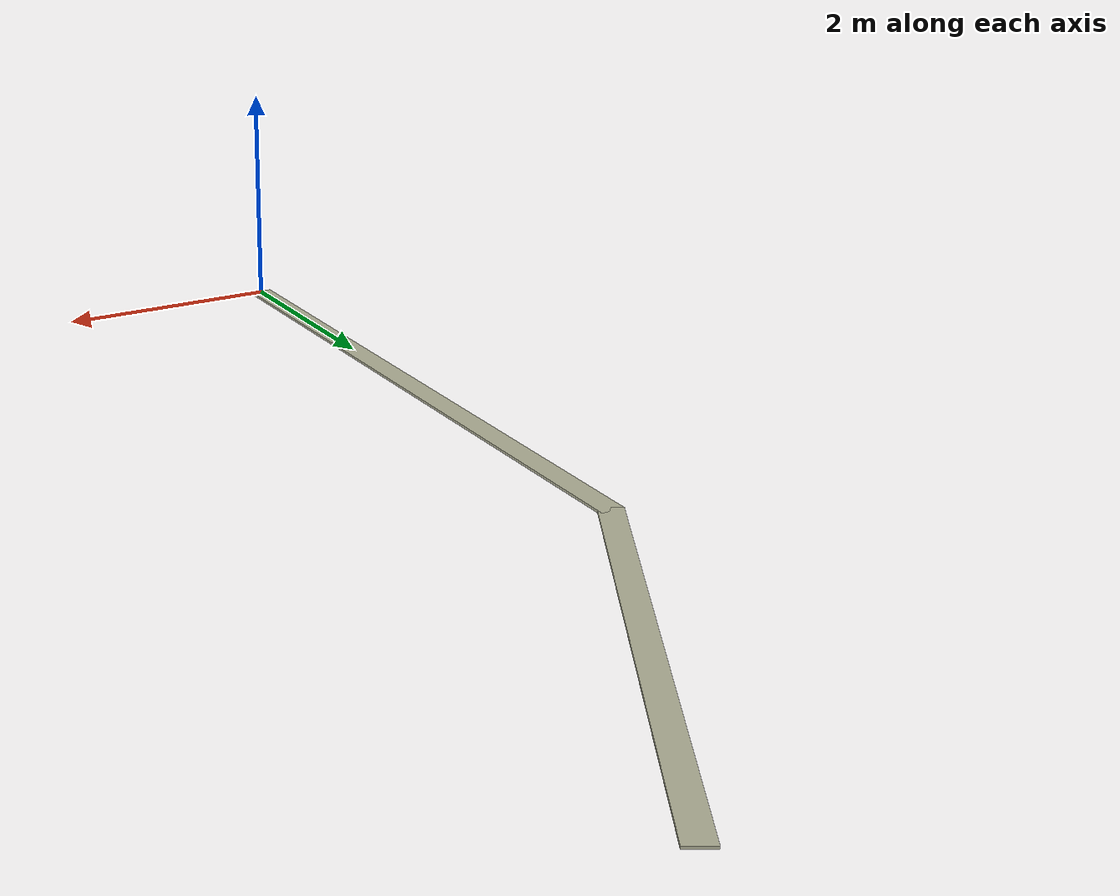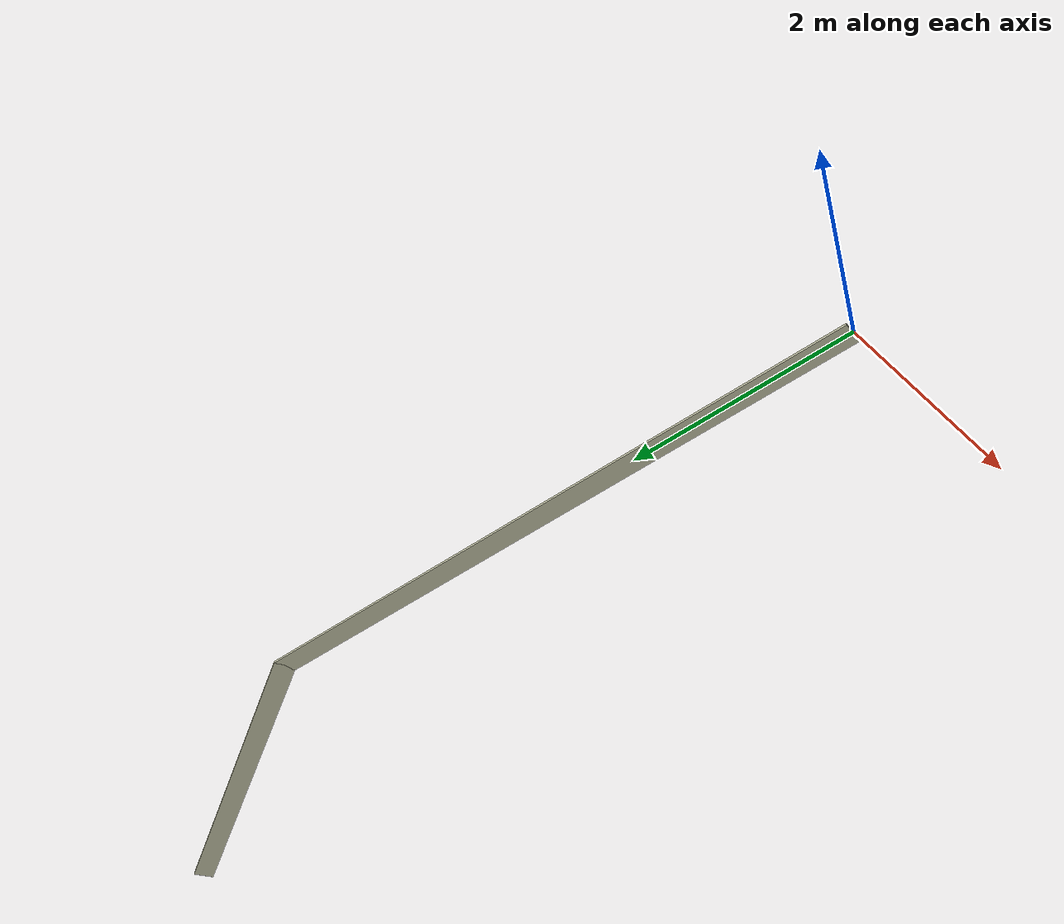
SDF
<?xml version='1.0'?>
<sdf version='1.7'>
  <model name='main_pipe'>
    <static>true</static>
    <link name='main_pipe'>

      <visual name='main_pipe1'>
        <geometry>
          <box>
            <size>0.2 6 0.02</size>
          </box>
        </geometry>
        <material>
          <script>
            <name>Gazebo/Grey</name>
            <uri>file://media/materials/scripts/gazebo.material</uri>
          </script>
          <shader type='pixel'>
            <normal_map>__default__</normal_map>
          </shader>
          <ambient>0 0 1 0</ambient>
          <diffuse>0.7 0.7 0.6 1</diffuse>
          <specular>0.01 0.01 0.01 1</specular>
          <emissive>0 0 1 1</emissive>
        </material>
        <pose>0 3 0 0 0 0</pose>
        <transparency>0</transparency>
        <cast_shadows>1</cast_shadows>
      </visual>

      <visual name="main_pipe2">
        <pose>0.98 7.68 0 0 0 -0.52</pose>
        <cast_shadows>false</cast_shadows>
        <geometry>
            <box>
              <size>0.2 4 0.02</size>
            </box>
        </geometry>
        <material>
          <script>
            <name>Gazebo/Grey</name>
            <uri>file://media/materials/scripts/gazebo.material</uri>
          </script>
          <shader type='pixel'>
            <normal_map>__default__</normal_map>
          </shader>
          <ambient>0 0 1 0</ambient>
          <diffuse>0.7 0.7 0.6 1</diffuse>
          <specular>0.01 0.01 0.01 1</specular>
          <emissive>0 0 1 1</emissive>
        </material>
      </visual>
    </link>
  </model>
</sdf>
